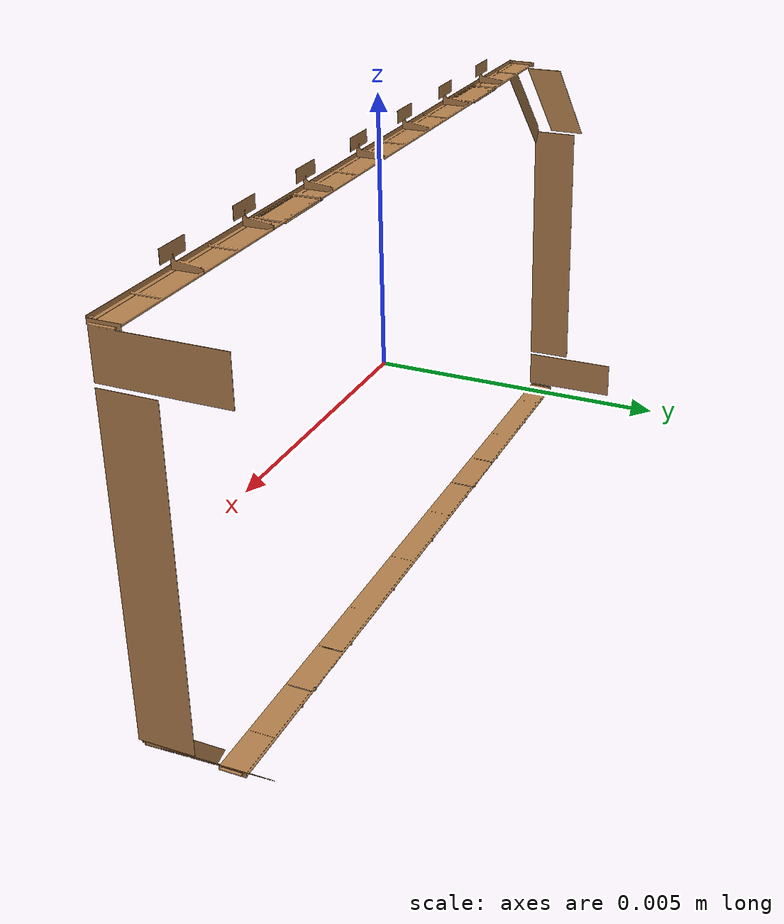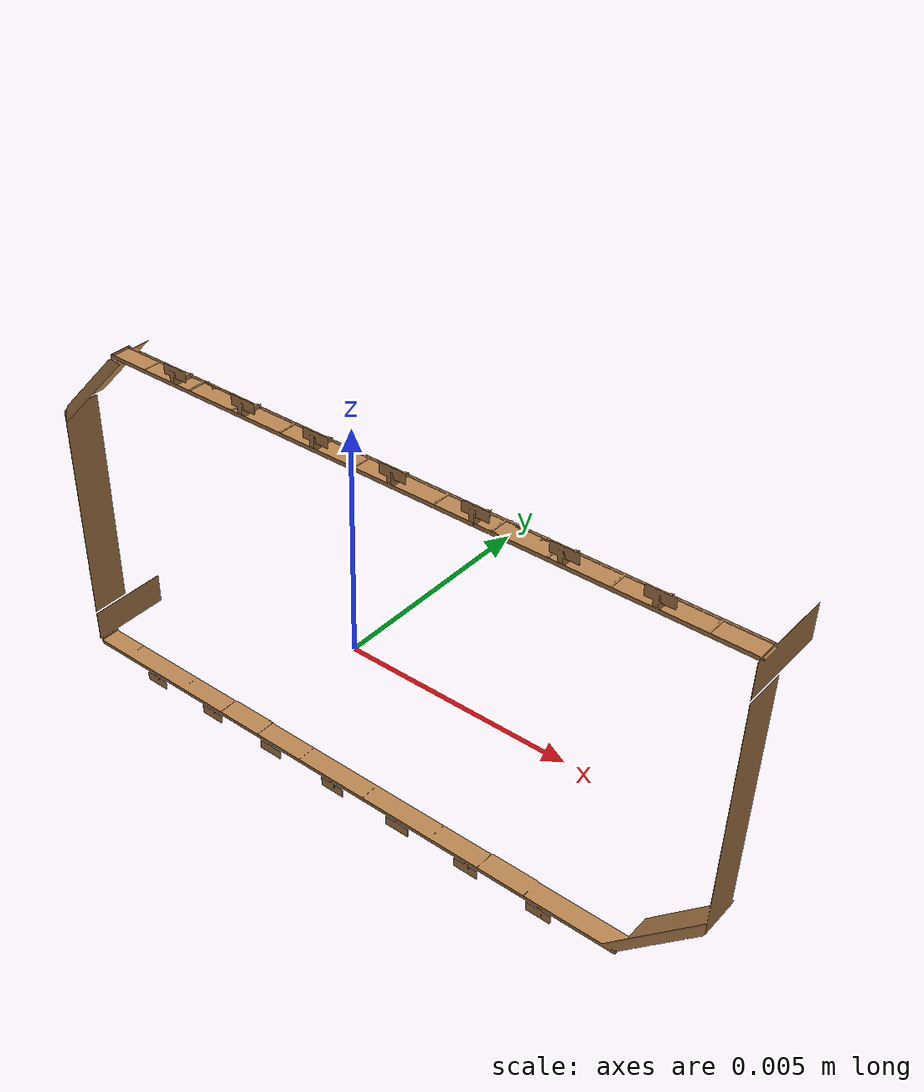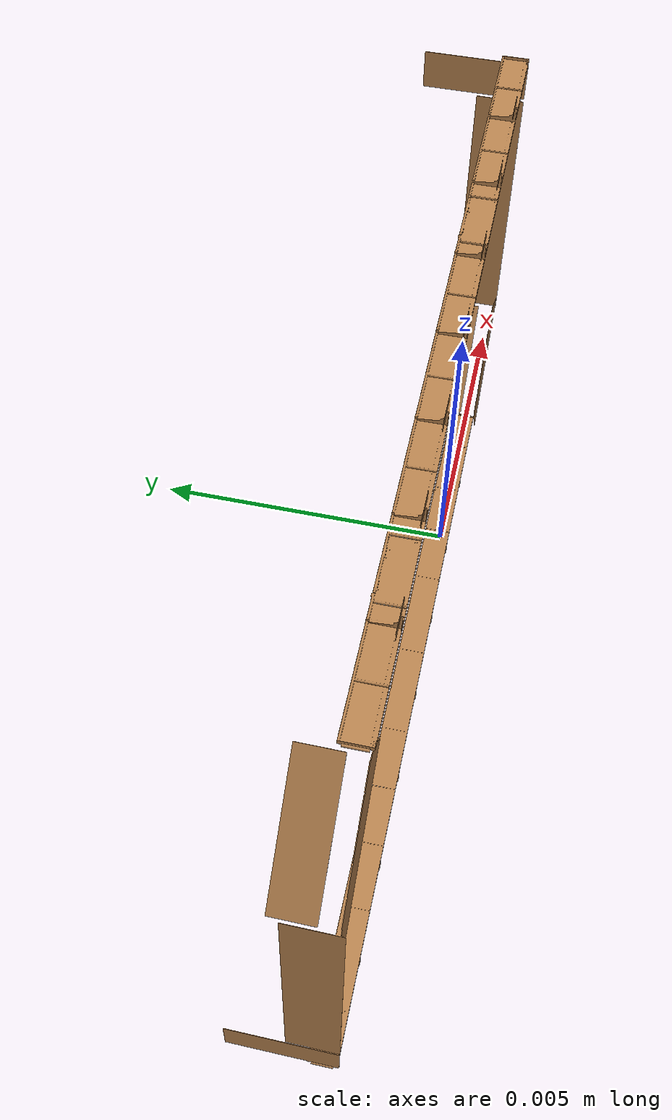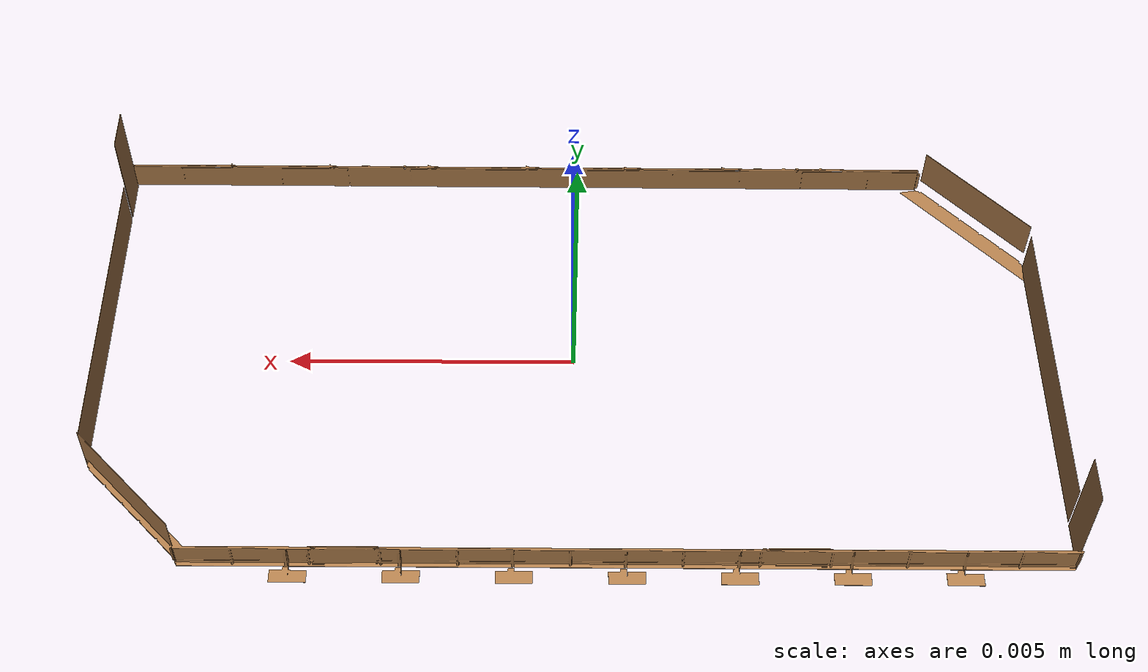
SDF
<?xml version='1.0'?>
<sdf version='1.7'>
  <model name='lapras_world'>
    <pose>0 0 0 0 0 0</pose>
    <link name='field'>
      <collision name='field_collision'>
        <geometry>
          <mesh>
            <scale>0.001 0.001 0.001</scale>
            <uri>model://meshes/field.stl</uri>
          </mesh>
        </geometry>
        <pose>0 0 0.0 0 -0 0</pose>
      </collision>
      <visual name='Wall_1_Visual'>
        <pose>0 0 0.0 0 -0 0</pose>
        <geometry>
          <mesh>
            <scale>0.001 0.001 0.001</scale>
            <uri>model://meshes/field.stl</uri>
          </mesh>
        </geometry>
        <material>
          <script>
            <uri>file://media/materials/scripts/gazebo.material</uri>
            <name>Gazebo/Wood</name>
          </script>
          <ambient>1 1 1 1</ambient>
        </material>
      </visual>
      <pose>0 0 0 0 0 0</pose>
    </link>

    <static>1</static>
  </model>
</sdf>
